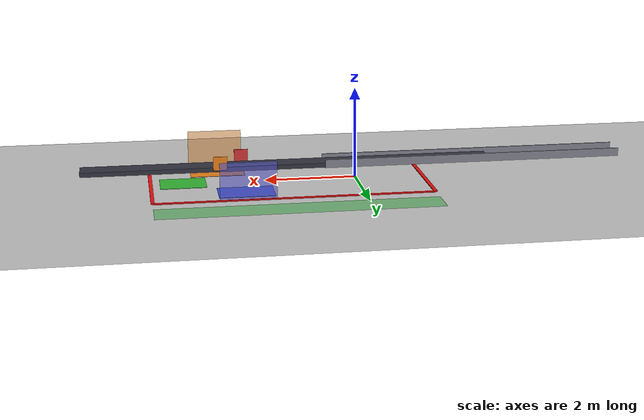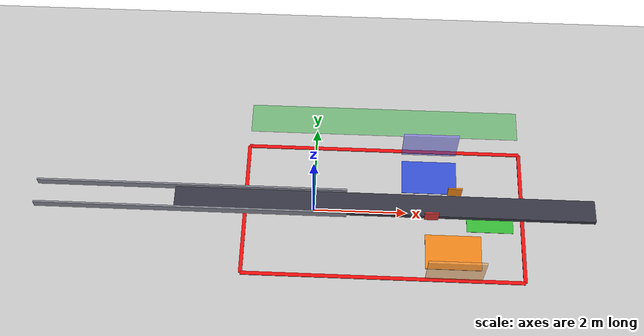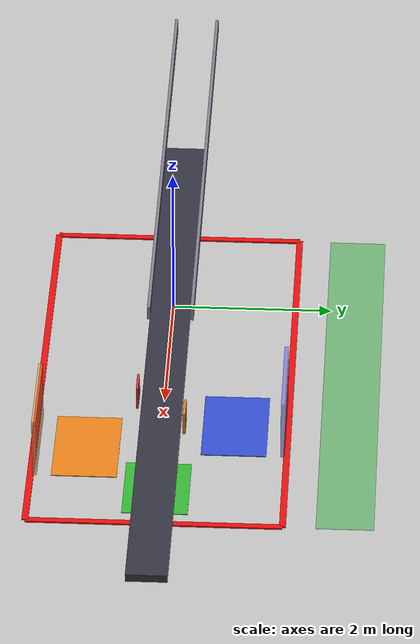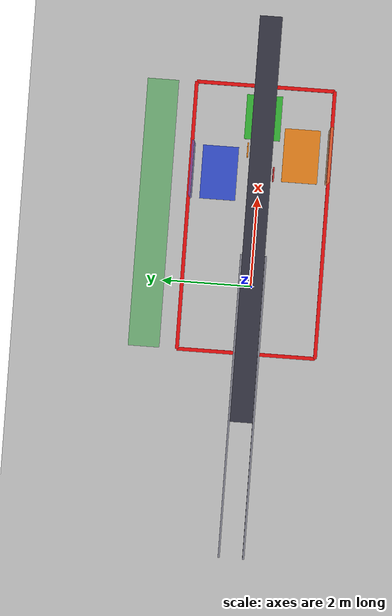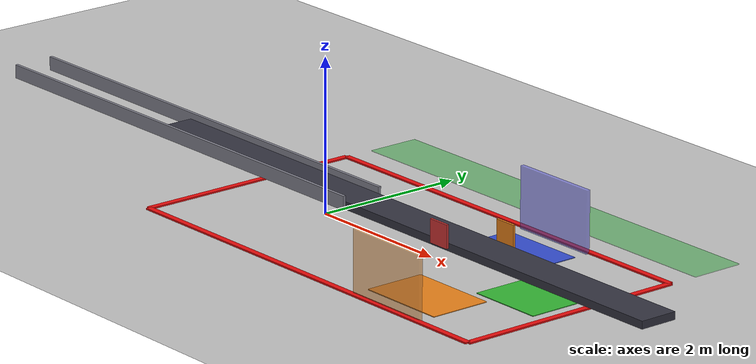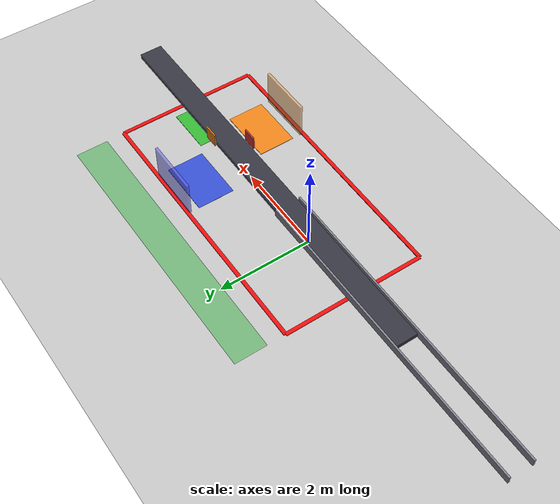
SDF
<?xml version="1.0"?>
<sdf version="1.8">
  <world name="cell">
    <physics name="default" type="ode">
      <max_step_size>0.002</max_step_size>
      <real_time_factor>1.0</real_time_factor>
    </physics>
    <plugin filename="ignition-gazebo-physics-system" name="ignition::gazebo::systems::Physics"/>
    <plugin filename="ignition-gazebo-user-commands-system" name="ignition::gazebo::systems::UserCommands"/>
    <plugin filename="ignition-gazebo-scene-broadcaster-system" name="ignition::gazebo::systems::SceneBroadcaster"/>
    <plugin filename="ignition-gazebo-sensors-system" name="ignition::gazebo::systems::Sensors">
      <render_engine>ogre2</render_engine>
    </plugin>

    <light type="directional" name="sun">
      <pose>0 0 8 0 0.3 0</pose>
      <diffuse>0.9 0.9 0.9 1</diffuse>
      <cast_shadows>true</cast_shadows>
      <direction>-0.3 0.2 -0.9</direction>
    </light>

    <!-- work area floor 10 x 6 m -->
    <model name="ground">
      <static>true</static>
      <link name="link">
        <collision name="collision">
          <geometry><plane><normal>0 0 1</normal><size>10 6</size></plane></geometry>
        </collision>
        <visual name="visual">
          <geometry><plane><normal>0 0 1</normal><size>10 6</size></plane></geometry>
          <material><ambient>0.75 0.75 0.75 1</ambient><diffuse>0.75 0.75 0.75 1</diffuse></material>
        </visual>
      </link>
    </model>

    <model name="safety_marking">
      <static>true</static>
      <link name="link">
        <visual name="hazard_north">
          <pose>1.5 1.55 0.012 0 0 0</pose>
          <geometry><box><size>6.0 0.08 0.02</size></box></geometry>
          <material><ambient>0.9 0.05 0.05 1</ambient><diffuse>0.9 0.05 0.05 1</diffuse></material>
        </visual>
        <visual name="hazard_south">
          <pose>1.5 -1.55 0.012 0 0 0</pose>
          <geometry><box><size>6.0 0.08 0.02</size></box></geometry>
          <material><ambient>0.9 0.05 0.05 1</ambient><diffuse>0.9 0.05 0.05 1</diffuse></material>
        </visual>
        <visual name="hazard_infeed">
          <pose>-1.5 0 0.012 0 0 0</pose>
          <geometry><box><size>0.08 3.1 0.02</size></box></geometry>
          <material><ambient>0.9 0.05 0.05 1</ambient><diffuse>0.9 0.05 0.05 1</diffuse></material>
        </visual>
        <visual name="hazard_outfeed">
          <pose>4.5 0 0.012 0 0 0</pose>
          <geometry><box><size>0.08 3.1 0.02</size></box></geometry>
          <material><ambient>0.9 0.05 0.05 1</ambient><diffuse>0.9 0.05 0.05 1</diffuse></material>
        </visual>
        <visual name="operator_safe_walkway">
          <pose>1.5 2.3 0.006 0 0 0</pose>
          <geometry><box><size>6.0 0.7 0.01</size></box></geometry>
          <material><ambient>0.1 0.65 0.15 0.45</ambient><diffuse>0.1 0.65 0.15 0.45</diffuse></material>
          <transparency>0.55</transparency>
        </visual>
      </link>
    </model>

    <model name="conveyor">
      <pose>1.5 0 0.35 0 0 0</pose>
      <link name="belt">
        <inertial><mass>200</mass><inertia><ixx>20</ixx><iyy>20</iyy><izz>20</izz></inertia></inertial>
        <collision name="collision">
          <geometry><box><size>9.0 0.5 0.1</size></box></geometry>
          <surface><friction><ode><mu>1.0</mu><mu2>1.0</mu2></ode></friction></surface>
        </collision>
        <visual name="visual">
          <geometry><box><size>9.0 0.5 0.1</size></box></geometry>
          <material><ambient>0.2 0.2 0.25 1</ambient><diffuse>0.2 0.2 0.25 1</diffuse></material>
        </visual>
      </link>
      <joint name="belt_joint" type="prismatic">
        <parent>world</parent>
        <child>belt</child>
        <axis>
          <xyz>1 0 0</xyz>
          <limit><lower>-3.2</lower><upper>3.2</upper></limit>
        </axis>
      </joint>
      <!-- belt speed (m/s) is commanded at runtime on this topic; the value
           comes from BELT_SPEED_M_S in src/constants.py -->
      <plugin filename="ignition-gazebo-joint-controller-system" name="ignition::gazebo::systems::JointController">
        <joint_name>belt_joint</joint_name>
        <topic>/conveyor/cmd_vel</topic>
      </plugin>
    </model>

    <model name="belt_guides">
      <static>true</static>
      <link name="link">
        <collision name="left">
          <pose>-2.65 0.272 0.39 0 0 0</pose>
          <geometry><box><size>6.7 0.04 0.18</size></box></geometry>
        </collision>
        <visual name="left_visual">
          <pose>-2.65 0.272 0.39 0 0 0</pose>
          <geometry><box><size>6.7 0.04 0.18</size></box></geometry>
          <material><ambient>0.5 0.5 0.55 1</ambient><diffuse>0.5 0.5 0.55 1</diffuse></material>
        </visual>
        <collision name="right">
          <pose>-2.65 -0.272 0.39 0 0 0</pose>
          <geometry><box><size>6.7 0.04 0.18</size></box></geometry>
        </collision>
        <visual name="right_visual">
          <pose>-2.65 -0.272 0.39 0 0 0</pose>
          <geometry><box><size>6.7 0.04 0.18</size></box></geometry>
          <material><ambient>0.5 0.5 0.55 1</ambient><diffuse>0.5 0.5 0.55 1</diffuse></material>
        </visual>
      </link>
    </model>

    <!-- RGBD camera above the belt, looking straight down -->
    <model name="camera">
      <static>true</static>
      <pose>1.5 0 1.9 0 1.5708 0</pose>
      <link name="link">
        <sensor name="rgbd" type="rgbd_camera">
          <update_rate>15</update_rate>
          <topic>camera</topic>
          <camera>
            <horizontal_fov>1.05</horizontal_fov>
            <image><width>640</width><height>480</height></image>
            <clip><near>0.1</near><far>5.0</far></clip>
          </camera>
        </sensor>
      </link>
    </model>

    <model name="pusher_c">
      <pose>2.5 -0.3 0.5 0 0 0</pose>
      <link name="paddle">
        <inertial><mass>5</mass><inertia><ixx>0.1</ixx><iyy>0.1</iyy><izz>0.1</izz></inertia></inertial>
        <collision name="collision">
          <geometry><box><size>0.30 0.03 0.30</size></box></geometry>
          <surface><friction><ode><mu>1.0</mu><mu2>1.0</mu2></ode></friction></surface>
        </collision>
        <visual name="visual">
          <geometry><box><size>0.30 0.03 0.30</size></box></geometry>
          <material><ambient>0.8 0.2 0.2 1</ambient><diffuse>0.8 0.2 0.2 1</diffuse></material>
        </visual>
      </link>
      <joint name="pusher_joint" type="prismatic">
        <parent>world</parent>
        <child>paddle</child>
        <axis>
          <xyz>0 1 0</xyz>
          <limit><lower>0</lower><upper>1.5</upper></limit>
        </axis>
      </joint>
      <plugin filename="ignition-gazebo-joint-controller-system" name="ignition::gazebo::systems::JointController">
        <joint_name>pusher_joint</joint_name>
        <topic>/pusher_c/cmd</topic>
      </plugin>
    </model>
    <model name="pusher_d">
      <pose>3.0 0.3 0.5 0 0 0</pose>
      <link name="paddle">
        <inertial><mass>5</mass><inertia><ixx>0.1</ixx><iyy>0.1</iyy><izz>0.1</izz></inertia></inertial>
        <collision name="collision">
          <geometry><box><size>0.30 0.03 0.30</size></box></geometry>
          <surface><friction><ode><mu>1.0</mu><mu2>1.0</mu2></ode></friction></surface>
        </collision>
        <visual name="visual">
          <geometry><box><size>0.30 0.03 0.30</size></box></geometry>
          <material><ambient>0.9 0.5 0.1 1</ambient><diffuse>0.9 0.5 0.1 1</diffuse></material>
        </visual>
      </link>
      <!-- axis -Y so a POSITIVE command extends toward zone D: the controller
           speaks one convention (+v = fire) for both pushers -->
      <joint name="pusher_joint" type="prismatic">
        <parent>world</parent>
        <child>paddle</child>
        <axis>
          <xyz>0 -1 0</xyz>
          <limit><lower>0</lower><upper>1.5</upper></limit>
        </axis>
      </joint>
      <plugin filename="ignition-gazebo-joint-controller-system" name="ignition::gazebo::systems::JointController">
        <joint_name>pusher_joint</joint_name>
        <topic>/pusher_d/cmd</topic>
      </plugin>
    </model>

    <!-- zone B: sorter infeed marker past the belt end -->
    <model name="zone_b">
      <static>true</static>
      <pose>3.8 0 0.005 0 0 0</pose>
      <link name="link">
        <collision name="collision"><geometry><box><size>1.0 0.8 0.01</size></box></geometry></collision>
        <visual name="visual">
          <geometry><box><size>1.0 0.8 0.01</size></box></geometry>
          <material><ambient>0.2 0.7 0.2 1</ambient><diffuse>0.2 0.7 0.2 1</diffuse></material>
        </visual>
      </link>
    </model>

    <model name="zone_c">
      <static>true</static>
      <pose>2.5 0.9 0.005 0 0 0</pose>
      <link name="link">
        <collision name="collision"><geometry><box><size>1.2 0.8 0.01</size></box></geometry></collision>
        <visual name="visual">
          <geometry><box><size>1.2 0.8 0.01</size></box></geometry>
          <material><ambient>0.2 0.3 0.8 1</ambient><diffuse>0.2 0.3 0.8 1</diffuse></material>
        </visual>
        <!-- far cage wall IS physical: fast/heavy items (Короб 400, 3 kg)
             overfly the patch and must be caught, like in a real roll-cage -->
        <collision name="cage_wall">
          <pose>0 0.6 0.4 0 0 0</pose>
          <geometry><box><size>1.2 0.05 0.8</size></box></geometry>
        </collision>
        <visual name="cage">
          <pose>0 0.6 0.4 0 0 0</pose>
          <geometry><box><size>1.2 0.05 0.8</size></box></geometry>
          <material><ambient>0.4 0.4 0.9 0.6</ambient><diffuse>0.4 0.4 0.9 0.6</diffuse></material>
        </visual>
      </link>
    </model>
    <model name="zone_d">
      <static>true</static>
      <pose>3.0 -0.9 0.005 0 0 0</pose>
      <link name="link">
        <collision name="collision"><geometry><box><size>1.2 0.8 0.01</size></box></geometry></collision>
        <visual name="visual">
          <geometry><box><size>1.2 0.8 0.01</size></box></geometry>
          <material><ambient>0.9 0.5 0.1 1</ambient><diffuse>0.9 0.5 0.1 1</diffuse></material>
        </visual>
        <collision name="cage_wall">
          <pose>0 -0.6 0.4 0 0 0</pose>
          <geometry><box><size>1.2 0.05 0.8</size></box></geometry>
        </collision>
        <visual name="cage">
          <pose>0 -0.6 0.4 0 0 0</pose>
          <geometry><box><size>1.2 0.05 0.8</size></box></geometry>
          <material><ambient>0.9 0.6 0.3 0.6</ambient><diffuse>0.9 0.6 0.3 0.6</diffuse></material>
        </visual>
      </link>
    </model>
  </world>
</sdf>
